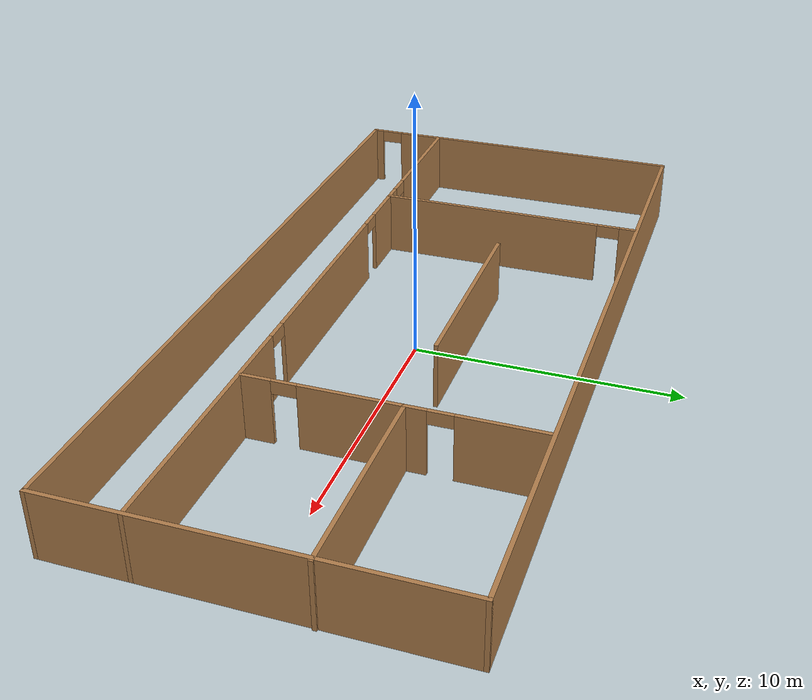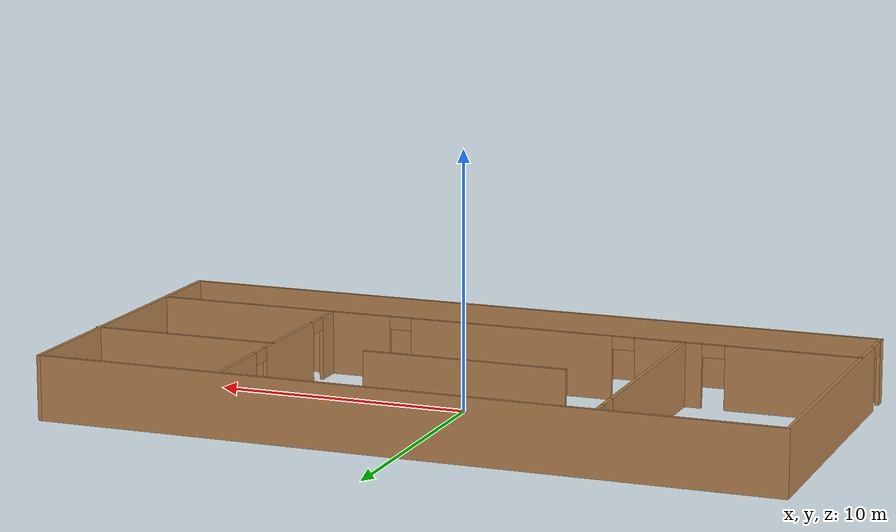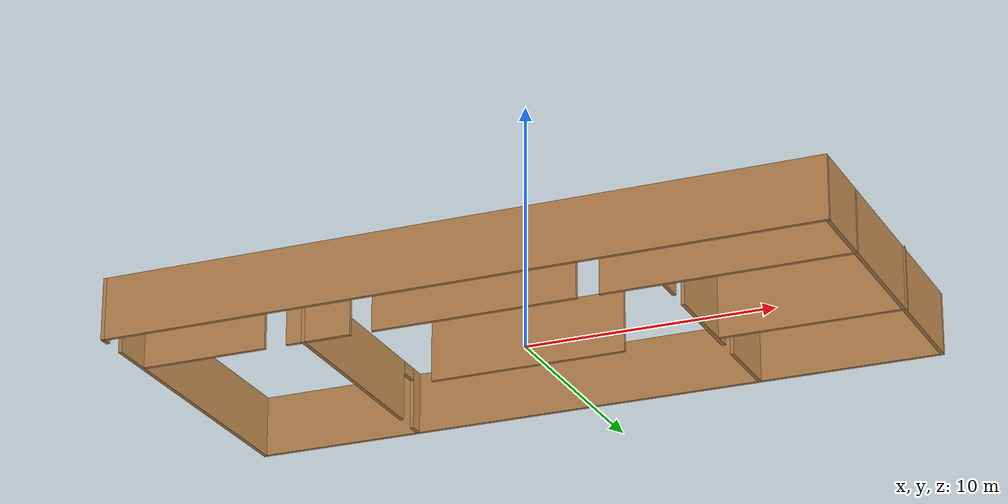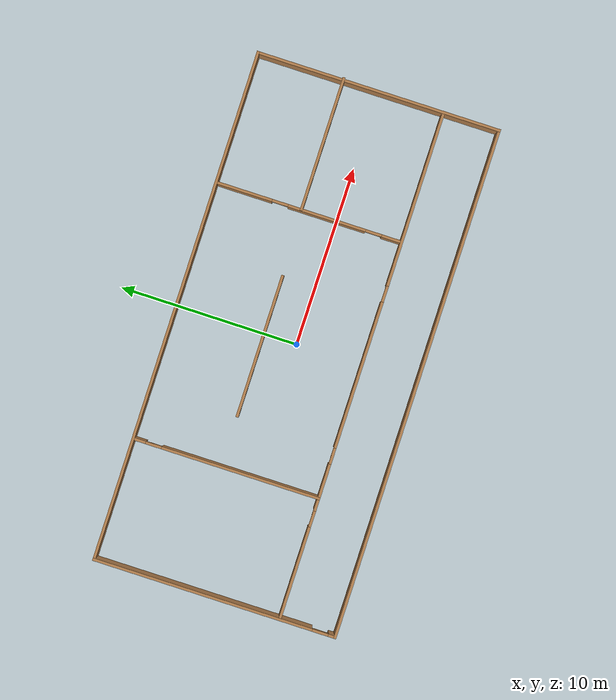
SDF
<?xml version='1.0'?>
<sdf version='1.6'>
  <model name='mybuilding'>
    <link name='Wall_0'>
      <pose frame=''>-14.3342 0 0 0 -0 1.5708</pose>
      <self_collide>0</self_collide>
      <kinematic>0</kinematic>
      <visual name='Wall_0_Visual_0'>
        <pose frame=''>-6.64035 0 1.25 0 -0 0</pose>
        <geometry>
          <box>
            <size>0.46929 0.15 2.5</size>
          </box>
        </geometry>
        <material>
          <script>
            <uri>file://media/materials/scripts/gazebo.material</uri>
            <name>Gazebo/Wood</name>
          </script>
          <ambient>1 1 1 1</ambient>
          <shader type='pixel'/>
          <diffuse>1 1 1 1</diffuse>
          <specular>0.2 0.2 0.2 1</specular>
          <emissive>0 0 0 1</emissive>
        </material>
        <meta>
          <layer>0</layer>
        </meta>
        <transparency>0</transparency>
        <cast_shadows>1</cast_shadows>
      </visual>
      <visual name='Wall_0_Visual_1'>
        <pose frame=''>0.684645 0 1.25 0 -0 0</pose>
        <geometry>
          <box>
            <size>12.3807 0.15 2.5</size>
          </box>
        </geometry>
        <material>
          <script>
            <uri>file://media/materials/scripts/gazebo.material</uri>
            <name>Gazebo/Wood</name>
          </script>
          <ambient>1 1 1 1</ambient>
          <shader type='pixel'/>
          <diffuse>1 1 1 1</diffuse>
          <specular>0.2 0.2 0.2 1</specular>
          <emissive>0 0 0 1</emissive>
        </material>
        <meta>
          <layer>0</layer>
        </meta>
        <transparency>0</transparency>
        <cast_shadows>1</cast_shadows>
      </visual>
      <visual name='Wall_0_Visual_2'>
        <pose frame=''>-5.95571 0 2.25 0 -0 0</pose>
        <geometry>
          <box>
            <size>0.9 0.15 0.5</size>
          </box>
        </geometry>
        <material>
          <script>
            <uri>file://media/materials/scripts/gazebo.material</uri>
            <name>Gazebo/Wood</name>
          </script>
          <ambient>1 1 1 1</ambient>
          <shader type='pixel'/>
          <diffuse>1 1 1 1</diffuse>
          <specular>0.2 0.2 0.2 1</specular>
          <emissive>0 0 0 1</emissive>
        </material>
        <meta>
          <layer>0</layer>
        </meta>
        <transparency>0</transparency>
        <cast_shadows>1</cast_shadows>
      </visual>
      <collision name='Wall_0_Collision_0'>
        <laser_retro>0</laser_retro>
        <max_contacts>10</max_contacts>
        <pose frame=''>-6.64035 0 1.25 0 -0 0</pose>
        <geometry>
          <box>
            <size>0.46929 0.15 2.5</size>
          </box>
        </geometry>
        <surface>
          <friction>
            <ode>
              <mu>1</mu>
              <mu2>1</mu2>
              <fdir1>0 0 0</fdir1>
              <slip1>0</slip1>
              <slip2>0</slip2>
            </ode>
            <torsional>
              <coefficient>1</coefficient>
              <patch_radius>0</patch_radius>
              <surface_radius>0</surface_radius>
              <use_patch_radius>1</use_patch_radius>
              <ode>
                <slip>0</slip>
              </ode>
            </torsional>
          </friction>
          <bounce>
            <restitution_coefficient>0</restitution_coefficient>
            <threshold>1e+06</threshold>
          </bounce>
          <contact>
            <collide_without_contact>0</collide_without_contact>
            <collide_without_contact_bitmask>1</collide_without_contact_bitmask>
            <collide_bitmask>1</collide_bitmask>
            <ode>
              <soft_cfm>0</soft_cfm>
              <soft_erp>0.2</soft_erp>
              <kp>1e+13</kp>
              <kd>1</kd>
              <max_vel>0.01</max_vel>
              <min_depth>0</min_depth>
            </ode>
            <bullet>
              <split_impulse>1</split_impulse>
              <split_impulse_penetration_threshold>-0.01</split_impulse_penetration_threshold>
              <soft_cfm>0</soft_cfm>
              <soft_erp>0.2</soft_erp>
              <kp>1e+13</kp>
              <kd>1</kd>
            </bullet>
          </contact>
        </surface>
      </collision>
      <collision name='Wall_0_Collision_1'>
        <laser_retro>0</laser_retro>
        <max_contacts>10</max_contacts>
        <pose frame=''>0.684645 0 1.25 0 -0 0</pose>
        <geometry>
          <box>
            <size>12.3807 0.15 2.5</size>
          </box>
        </geometry>
        <surface>
          <friction>
            <ode>
              <mu>1</mu>
              <mu2>1</mu2>
              <fdir1>0 0 0</fdir1>
              <slip1>0</slip1>
              <slip2>0</slip2>
            </ode>
            <torsional>
              <coefficient>1</coefficient>
              <patch_radius>0</patch_radius>
              <surface_radius>0</surface_radius>
              <use_patch_radius>1</use_patch_radius>
              <ode>
                <slip>0</slip>
              </ode>
            </torsional>
          </friction>
          <bounce>
            <restitution_coefficient>0</restitution_coefficient>
            <threshold>1e+06</threshold>
          </bounce>
          <contact>
            <collide_without_contact>0</collide_without_contact>
            <collide_without_contact_bitmask>1</collide_without_contact_bitmask>
            <collide_bitmask>1</collide_bitmask>
            <ode>
              <soft_cfm>0</soft_cfm>
              <soft_erp>0.2</soft_erp>
              <kp>1e+13</kp>
              <kd>1</kd>
              <max_vel>0.01</max_vel>
              <min_depth>0</min_depth>
            </ode>
            <bullet>
              <split_impulse>1</split_impulse>
              <split_impulse_penetration_threshold>-0.01</split_impulse_penetration_threshold>
              <soft_cfm>0</soft_cfm>
              <soft_erp>0.2</soft_erp>
              <kp>1e+13</kp>
              <kd>1</kd>
            </bullet>
          </contact>
        </surface>
      </collision>
      <collision name='Wall_0_Collision_2'>
        <laser_retro>0</laser_retro>
        <max_contacts>10</max_contacts>
        <pose frame=''>-5.95571 0 2.25 0 -0 0</pose>
        <geometry>
          <box>
            <size>0.9 0.15 0.5</size>
          </box>
        </geometry>
        <surface>
          <friction>
            <ode>
              <mu>1</mu>
              <mu2>1</mu2>
              <fdir1>0 0 0</fdir1>
              <slip1>0</slip1>
              <slip2>0</slip2>
            </ode>
            <torsional>
              <coefficient>1</coefficient>
              <patch_radius>0</patch_radius>
              <surface_radius>0</surface_radius>
              <use_patch_radius>1</use_patch_radius>
              <ode>
                <slip>0</slip>
              </ode>
            </torsional>
          </friction>
          <bounce>
            <restitution_coefficient>0</restitution_coefficient>
            <threshold>1e+06</threshold>
          </bounce>
          <contact>
            <collide_without_contact>0</collide_without_contact>
            <collide_without_contact_bitmask>1</collide_without_contact_bitmask>
            <collide_bitmask>1</collide_bitmask>
            <ode>
              <soft_cfm>0</soft_cfm>
              <soft_erp>0.2</soft_erp>
              <kp>1e+13</kp>
              <kd>1</kd>
              <max_vel>0.01</max_vel>
              <min_depth>0</min_depth>
            </ode>
            <bullet>
              <split_impulse>1</split_impulse>
              <split_impulse_penetration_threshold>-0.01</split_impulse_penetration_threshold>
              <soft_cfm>0</soft_cfm>
              <soft_erp>0.2</soft_erp>
              <kp>1e+13</kp>
              <kd>1</kd>
            </bullet>
          </contact>
        </surface>
      </collision>
    </link>
    <link name='Wall_1'>
      <pose frame=''>-0.034165 6.8 0 0 -0 0</pose>
      <self_collide>0</self_collide>
      <kinematic>0</kinematic>
      <visual name='Wall_1_Visual'>
        <pose frame=''>0 0 1.25 0 -0 0</pose>
        <geometry>
          <box>
            <size>28.75 0.15 2.5</size>
          </box>
        </geometry>
        <material>
          <script>
            <uri>file://media/materials/scripts/gazebo.material</uri>
            <name>Gazebo/Wood</name>
          </script>
          <ambient>1 1 1 1</ambient>
          <shader type='pixel'/>
          <diffuse>1 1 1 1</diffuse>
          <specular>0.2 0.2 0.2 1</specular>
          <emissive>0 0 0 1</emissive>
        </material>
        <meta>
          <layer>0</layer>
        </meta>
        <transparency>0</transparency>
        <cast_shadows>1</cast_shadows>
      </visual>
      <collision name='Wall_1_Collision'>
        <laser_retro>0</laser_retro>
        <max_contacts>10</max_contacts>
        <pose frame=''>0 0 1.25 0 -0 0</pose>
        <geometry>
          <box>
            <size>28.75 0.15 2.5</size>
          </box>
        </geometry>
        <surface>
          <friction>
            <ode>
              <mu>1</mu>
              <mu2>1</mu2>
              <fdir1>0 0 0</fdir1>
              <slip1>0</slip1>
              <slip2>0</slip2>
            </ode>
            <torsional>
              <coefficient>1</coefficient>
              <patch_radius>0</patch_radius>
              <surface_radius>0</surface_radius>
              <use_patch_radius>1</use_patch_radius>
              <ode>
                <slip>0</slip>
              </ode>
            </torsional>
          </friction>
          <bounce>
            <restitution_coefficient>0</restitution_coefficient>
            <threshold>1e+06</threshold>
          </bounce>
          <contact>
            <collide_without_contact>0</collide_without_contact>
            <collide_without_contact_bitmask>1</collide_without_contact_bitmask>
            <collide_bitmask>1</collide_bitmask>
            <ode>
              <soft_cfm>0</soft_cfm>
              <soft_erp>0.2</soft_erp>
              <kp>1e+13</kp>
              <kd>1</kd>
              <max_vel>0.01</max_vel>
              <min_depth>0</min_depth>
            </ode>
            <bullet>
              <split_impulse>1</split_impulse>
              <split_impulse_penetration_threshold>-0.01</split_impulse_penetration_threshold>
              <soft_cfm>0</soft_cfm>
              <soft_erp>0.2</soft_erp>
              <kp>1e+13</kp>
              <kd>1</kd>
            </bullet>
          </contact>
        </surface>
      </collision>
    </link>
    <link name='Wall_11'>
      <pose frame=''>10.6592 1.99469 0 0 -0 0</pose>
      <self_collide>0</self_collide>
      <kinematic>0</kinematic>
      <visual name='Wall_11_Visual'>
        <pose frame=''>0 0 1.25 0 -0 0</pose>
        <geometry>
          <box>
            <size>7.5 0.15 2.5</size>
          </box>
        </geometry>
        <material>
          <script>
            <uri>file://media/materials/scripts/gazebo.material</uri>
            <name>Gazebo/Wood</name>
          </script>
          <ambient>1 1 1 1</ambient>
          <shader type='pixel'/>
          <diffuse>1 1 1 1</diffuse>
          <specular>0.2 0.2 0.2 1</specular>
          <emissive>0 0 0 1</emissive>
        </material>
        <meta>
          <layer>0</layer>
        </meta>
        <transparency>0</transparency>
        <cast_shadows>1</cast_shadows>
      </visual>
      <collision name='Wall_11_Collision'>
        <laser_retro>0</laser_retro>
        <max_contacts>10</max_contacts>
        <pose frame=''>0 0 1.25 0 -0 0</pose>
        <geometry>
          <box>
            <size>7.5 0.15 2.5</size>
          </box>
        </geometry>
        <surface>
          <friction>
            <ode>
              <mu>1</mu>
              <mu2>1</mu2>
              <fdir1>0 0 0</fdir1>
              <slip1>0</slip1>
              <slip2>0</slip2>
            </ode>
            <torsional>
              <coefficient>1</coefficient>
              <patch_radius>0</patch_radius>
              <surface_radius>0</surface_radius>
              <use_patch_radius>1</use_patch_radius>
              <ode>
                <slip>0</slip>
              </ode>
            </torsional>
          </friction>
          <bounce>
            <restitution_coefficient>0</restitution_coefficient>
            <threshold>1e+06</threshold>
          </bounce>
          <contact>
            <collide_without_contact>0</collide_without_contact>
            <collide_without_contact_bitmask>1</collide_without_contact_bitmask>
            <collide_bitmask>1</collide_bitmask>
            <ode>
              <soft_cfm>0</soft_cfm>
              <soft_erp>0.2</soft_erp>
              <kp>1e+13</kp>
              <kd>1</kd>
              <max_vel>0.01</max_vel>
              <min_depth>0</min_depth>
            </ode>
            <bullet>
              <split_impulse>1</split_impulse>
              <split_impulse_penetration_threshold>-0.01</split_impulse_penetration_threshold>
              <soft_cfm>0</soft_cfm>
              <soft_erp>0.2</soft_erp>
              <kp>1e+13</kp>
              <kd>1</kd>
            </bullet>
          </contact>
        </surface>
      </collision>
    </link>
    <link name='Wall_13'>
      <pose frame=''>-0.699826 1.85398 0 0 -0 0</pose>
      <self_collide>0</self_collide>
      <kinematic>0</kinematic>
      <visual name='Wall_13_Visual'>
        <pose frame=''>0 0 1.25 0 -0 0</pose>
        <geometry>
          <box>
            <size>8 0.15 2.5</size>
          </box>
        </geometry>
        <material>
          <script>
            <uri>file://media/materials/scripts/gazebo.material</uri>
            <name>Gazebo/Wood</name>
          </script>
          <ambient>1 1 1 1</ambient>
          <shader type='pixel'/>
          <diffuse>1 1 1 1</diffuse>
          <specular>0.2 0.2 0.2 1</specular>
          <emissive>0 0 0 1</emissive>
        </material>
        <meta>
          <layer>0</layer>
        </meta>
        <transparency>0</transparency>
        <cast_shadows>1</cast_shadows>
      </visual>
      <collision name='Wall_13_Collision'>
        <laser_retro>0</laser_retro>
        <max_contacts>10</max_contacts>
        <pose frame=''>0 0 1.25 0 -0 0</pose>
        <geometry>
          <box>
            <size>8 0.15 2.5</size>
          </box>
        </geometry>
        <surface>
          <friction>
            <ode>
              <mu>1</mu>
              <mu2>1</mu2>
              <fdir1>0 0 0</fdir1>
              <slip1>0</slip1>
              <slip2>0</slip2>
            </ode>
            <torsional>
              <coefficient>1</coefficient>
              <patch_radius>0</patch_radius>
              <surface_radius>0</surface_radius>
              <use_patch_radius>1</use_patch_radius>
              <ode>
                <slip>0</slip>
              </ode>
            </torsional>
          </friction>
          <bounce>
            <restitution_coefficient>0</restitution_coefficient>
            <threshold>1e+06</threshold>
          </bounce>
          <contact>
            <collide_without_contact>0</collide_without_contact>
            <collide_without_contact_bitmask>1</collide_without_contact_bitmask>
            <collide_bitmask>1</collide_bitmask>
            <ode>
              <soft_cfm>0</soft_cfm>
              <soft_erp>0.2</soft_erp>
              <kp>1e+13</kp>
              <kd>1</kd>
              <max_vel>0.01</max_vel>
              <min_depth>0</min_depth>
            </ode>
            <bullet>
              <split_impulse>1</split_impulse>
              <split_impulse_penetration_threshold>-0.01</split_impulse_penetration_threshold>
              <soft_cfm>0</soft_cfm>
              <soft_erp>0.2</soft_erp>
              <kp>1e+13</kp>
              <kd>1</kd>
            </bullet>
          </contact>
        </surface>
      </collision>
    </link>
    <link name='Wall_2'>
      <pose frame=''>14.2658 0 0 0 0 -1.5708</pose>
      <self_collide>0</self_collide>
      <kinematic>0</kinematic>
      <visual name='Wall_2_Visual'>
        <pose frame=''>0 0 1.25 0 -0 0</pose>
        <geometry>
          <box>
            <size>13.75 0.15 2.5</size>
          </box>
        </geometry>
        <material>
          <script>
            <uri>file://media/materials/scripts/gazebo.material</uri>
            <name>Gazebo/Wood</name>
          </script>
          <ambient>1 1 1 1</ambient>
          <shader type='pixel'/>
          <diffuse>1 1 1 1</diffuse>
          <specular>0.2 0.2 0.2 1</specular>
          <emissive>0 0 0 1</emissive>
        </material>
        <meta>
          <layer>0</layer>
        </meta>
        <transparency>0</transparency>
        <cast_shadows>1</cast_shadows>
      </visual>
      <collision name='Wall_2_Collision'>
        <laser_retro>0</laser_retro>
        <max_contacts>10</max_contacts>
        <pose frame=''>0 0 1.25 0 -0 0</pose>
        <geometry>
          <box>
            <size>13.75 0.15 2.5</size>
          </box>
        </geometry>
        <surface>
          <friction>
            <ode>
              <mu>1</mu>
              <mu2>1</mu2>
              <fdir1>0 0 0</fdir1>
              <slip1>0</slip1>
              <slip2>0</slip2>
            </ode>
            <torsional>
              <coefficient>1</coefficient>
              <patch_radius>0</patch_radius>
              <surface_radius>0</surface_radius>
              <use_patch_radius>1</use_patch_radius>
              <ode>
                <slip>0</slip>
              </ode>
            </torsional>
          </friction>
          <bounce>
            <restitution_coefficient>0</restitution_coefficient>
            <threshold>1e+06</threshold>
          </bounce>
          <contact>
            <collide_without_contact>0</collide_without_contact>
            <collide_without_contact_bitmask>1</collide_without_contact_bitmask>
            <collide_bitmask>1</collide_bitmask>
            <ode>
              <soft_cfm>0</soft_cfm>
              <soft_erp>0.2</soft_erp>
              <kp>1e+13</kp>
              <kd>1</kd>
              <max_vel>0.01</max_vel>
              <min_depth>0</min_depth>
            </ode>
            <bullet>
              <split_impulse>1</split_impulse>
              <split_impulse_penetration_threshold>-0.01</split_impulse_penetration_threshold>
              <soft_cfm>0</soft_cfm>
              <soft_erp>0.2</soft_erp>
              <kp>1e+13</kp>
              <kd>1</kd>
            </bullet>
          </contact>
        </surface>
      </collision>
    </link>
    <link name='Wall_3'>
      <pose frame=''>-0.034165 -6.8 0 0 -0 3.14159</pose>
      <self_collide>0</self_collide>
      <kinematic>0</kinematic>
      <visual name='Wall_3_Visual'>
        <pose frame=''>0 0 1.25 0 -0 0</pose>
        <geometry>
          <box>
            <size>28.75 0.15 2.5</size>
          </box>
        </geometry>
        <material>
          <script>
            <uri>file://media/materials/scripts/gazebo.material</uri>
            <name>Gazebo/Wood</name>
          </script>
          <ambient>1 1 1 1</ambient>
          <shader type='pixel'/>
          <diffuse>1 1 1 1</diffuse>
          <specular>0.2 0.2 0.2 1</specular>
          <emissive>0 0 0 1</emissive>
        </material>
        <meta>
          <layer>0</layer>
        </meta>
        <transparency>0</transparency>
        <cast_shadows>1</cast_shadows>
      </visual>
      <collision name='Wall_3_Collision'>
        <laser_retro>0</laser_retro>
        <max_contacts>10</max_contacts>
        <pose frame=''>0 0 1.25 0 -0 0</pose>
        <geometry>
          <box>
            <size>28.75 0.15 2.5</size>
          </box>
        </geometry>
        <surface>
          <friction>
            <ode>
              <mu>1</mu>
              <mu2>1</mu2>
              <fdir1>0 0 0</fdir1>
              <slip1>0</slip1>
              <slip2>0</slip2>
            </ode>
            <torsional>
              <coefficient>1</coefficient>
              <patch_radius>0</patch_radius>
              <surface_radius>0</surface_radius>
              <use_patch_radius>1</use_patch_radius>
              <ode>
                <slip>0</slip>
              </ode>
            </torsional>
          </friction>
          <bounce>
            <restitution_coefficient>0</restitution_coefficient>
            <threshold>1e+06</threshold>
          </bounce>
          <contact>
            <collide_without_contact>0</collide_without_contact>
            <collide_without_contact_bitmask>1</collide_without_contact_bitmask>
            <collide_bitmask>1</collide_bitmask>
            <ode>
              <soft_cfm>0</soft_cfm>
              <soft_erp>0.2</soft_erp>
              <kp>1e+13</kp>
              <kd>1</kd>
              <max_vel>0.01</max_vel>
              <min_depth>0</min_depth>
            </ode>
            <bullet>
              <split_impulse>1</split_impulse>
              <split_impulse_penetration_threshold>-0.01</split_impulse_penetration_threshold>
              <soft_cfm>0</soft_cfm>
              <soft_erp>0.2</soft_erp>
              <kp>1e+13</kp>
              <kd>1</kd>
            </bullet>
          </contact>
        </surface>
      </collision>
    </link>
    <link name='Wall_5'>
      <pose frame=''>-0.034165 -3.66909 0 0 -0 0</pose>
      <self_collide>0</self_collide>
      <kinematic>0</kinematic>
      <visual name='Wall_5_Visual_0'>
        <pose frame=''>-11.7306 0 1.25 0 -0 0</pose>
        <geometry>
          <box>
            <size>5.28878 0.15 2.5</size>
          </box>
        </geometry>
        <material>
          <script>
            <uri>file://media/materials/scripts/gazebo.material</uri>
            <name>Gazebo/Wood</name>
          </script>
          <ambient>1 1 1 1</ambient>
          <shader type='pixel'/>
          <diffuse>1 1 1 1</diffuse>
          <specular>0.2 0.2 0.2 1</specular>
          <emissive>0 0 0 1</emissive>
        </material>
        <meta>
          <layer>0</layer>
        </meta>
        <transparency>0</transparency>
        <cast_shadows>1</cast_shadows>
      </visual>
      <visual name='Wall_5_Visual_1'>
        <pose frame=''>-6.85969 0 1.25 0 -0 0</pose>
        <geometry>
          <box>
            <size>2.65306 0.15 2.5</size>
          </box>
        </geometry>
        <material>
          <script>
            <uri>file://media/materials/scripts/gazebo.material</uri>
            <name>Gazebo/Wood</name>
          </script>
          <ambient>1 1 1 1</ambient>
          <shader type='pixel'/>
          <diffuse>1 1 1 1</diffuse>
          <specular>0.2 0.2 0.2 1</specular>
          <emissive>0 0 0 1</emissive>
        </material>
        <meta>
          <layer>0</layer>
        </meta>
        <transparency>0</transparency>
        <cast_shadows>1</cast_shadows>
      </visual>
      <visual name='Wall_5_Visual_2'>
        <pose frame=''>-0.509925 0 1.25 0 -0 0</pose>
        <geometry>
          <box>
            <size>8.24648 0.15 2.5</size>
          </box>
        </geometry>
        <material>
          <script>
            <uri>file://media/materials/scripts/gazebo.material</uri>
            <name>Gazebo/Wood</name>
          </script>
          <ambient>1 1 1 1</ambient>
          <shader type='pixel'/>
          <diffuse>1 1 1 1</diffuse>
          <specular>0.2 0.2 0.2 1</specular>
          <emissive>0 0 0 1</emissive>
        </material>
        <meta>
          <layer>0</layer>
        </meta>
        <transparency>0</transparency>
        <cast_shadows>1</cast_shadows>
      </visual>
      <visual name='Wall_5_Visual_3'>
        <pose frame=''>9.44416 0 1.25 0 -0 0</pose>
        <geometry>
          <box>
            <size>9.86169 0.15 2.5</size>
          </box>
        </geometry>
        <material>
          <script>
            <uri>file://media/materials/scripts/gazebo.material</uri>
            <name>Gazebo/Wood</name>
          </script>
          <ambient>1 1 1 1</ambient>
          <shader type='pixel'/>
          <diffuse>1 1 1 1</diffuse>
          <specular>0.2 0.2 0.2 1</specular>
          <emissive>0 0 0 1</emissive>
        </material>
        <meta>
          <layer>0</layer>
        </meta>
        <transparency>0</transparency>
        <cast_shadows>1</cast_shadows>
      </visual>
      <visual name='Wall_5_Visual_4'>
        <pose frame=''>-8.63622 0 2.25 0 -0 0</pose>
        <geometry>
          <box>
            <size>0.9 0.15 0.5</size>
          </box>
        </geometry>
        <material>
          <script>
            <uri>file://media/materials/scripts/gazebo.material</uri>
            <name>Gazebo/Wood</name>
          </script>
          <ambient>1 1 1 1</ambient>
          <shader type='pixel'/>
          <diffuse>1 1 1 1</diffuse>
          <specular>0.2 0.2 0.2 1</specular>
          <emissive>0 0 0 1</emissive>
        </material>
        <meta>
          <layer>0</layer>
        </meta>
        <transparency>0</transparency>
        <cast_shadows>1</cast_shadows>
      </visual>
      <visual name='Wall_5_Visual_5'>
        <pose frame=''>-5.08316 0 2.25 0 -0 0</pose>
        <geometry>
          <box>
            <size>0.9 0.15 0.5</size>
          </box>
        </geometry>
        <material>
          <script>
            <uri>file://media/materials/scripts/gazebo.material</uri>
            <name>Gazebo/Wood</name>
          </script>
          <ambient>1 1 1 1</ambient>
          <shader type='pixel'/>
          <diffuse>1 1 1 1</diffuse>
          <specular>0.2 0.2 0.2 1</specular>
          <emissive>0 0 0 1</emissive>
        </material>
        <meta>
          <layer>0</layer>
        </meta>
        <transparency>0</transparency>
        <cast_shadows>1</cast_shadows>
      </visual>
      <visual name='Wall_5_Visual_6'>
        <pose frame=''>4.06331 0 2.25 0 -0 0</pose>
        <geometry>
          <box>
            <size>0.9 0.15 0.5</size>
          </box>
        </geometry>
        <material>
          <script>
            <uri>file://media/materials/scripts/gazebo.material</uri>
            <name>Gazebo/Wood</name>
          </script>
          <ambient>1 1 1 1</ambient>
          <shader type='pixel'/>
          <diffuse>1 1 1 1</diffuse>
          <specular>0.2 0.2 0.2 1</specular>
          <emissive>0 0 0 1</emissive>
        </material>
        <meta>
          <layer>0</layer>
        </meta>
        <transparency>0</transparency>
        <cast_shadows>1</cast_shadows>
      </visual>
      <collision name='Wall_5_Collision_0'>
        <laser_retro>0</laser_retro>
        <max_contacts>10</max_contacts>
        <pose frame=''>-11.7306 0 1.25 0 -0 0</pose>
        <geometry>
          <box>
            <size>5.28878 0.15 2.5</size>
          </box>
        </geometry>
        <surface>
          <friction>
            <ode>
              <mu>1</mu>
              <mu2>1</mu2>
              <fdir1>0 0 0</fdir1>
              <slip1>0</slip1>
              <slip2>0</slip2>
            </ode>
            <torsional>
              <coefficient>1</coefficient>
              <patch_radius>0</patch_radius>
              <surface_radius>0</surface_radius>
              <use_patch_radius>1</use_patch_radius>
              <ode>
                <slip>0</slip>
              </ode>
            </torsional>
          </friction>
          <bounce>
            <restitution_coefficient>0</restitution_coefficient>
            <threshold>1e+06</threshold>
          </bounce>
          <contact>
            <collide_without_contact>0</collide_without_contact>
            <collide_without_contact_bitmask>1</collide_without_contact_bitmask>
            <collide_bitmask>1</collide_bitmask>
            <ode>
              <soft_cfm>0</soft_cfm>
              <soft_erp>0.2</soft_erp>
              <kp>1e+13</kp>
              <kd>1</kd>
              <max_vel>0.01</max_vel>
              <min_depth>0</min_depth>
            </ode>
            <bullet>
              <split_impulse>1</split_impulse>
              <split_impulse_penetration_threshold>-0.01</split_impulse_penetration_threshold>
              <soft_cfm>0</soft_cfm>
              <soft_erp>0.2</soft_erp>
              <kp>1e+13</kp>
              <kd>1</kd>
            </bullet>
          </contact>
        </surface>
      </collision>
      <collision name='Wall_5_Collision_1'>
        <laser_retro>0</laser_retro>
        <max_contacts>10</max_contacts>
        <pose frame=''>-6.85969 0 1.25 0 -0 0</pose>
        <geometry>
          <box>
            <size>2.65306 0.15 2.5</size>
          </box>
        </geometry>
        <surface>
          <friction>
            <ode>
              <mu>1</mu>
              <mu2>1</mu2>
              <fdir1>0 0 0</fdir1>
              <slip1>0</slip1>
              <slip2>0</slip2>
            </ode>
            <torsional>
              <coefficient>1</coefficient>
              <patch_radius>0</patch_radius>
              <surface_radius>0</surface_radius>
              <use_patch_radius>1</use_patch_radius>
              <ode>
                <slip>0</slip>
              </ode>
            </torsional>
          </friction>
          <bounce>
            <restitution_coefficient>0</restitution_coefficient>
            <threshold>1e+06</threshold>
          </bounce>
          <contact>
            <collide_without_contact>0</collide_without_contact>
            <collide_without_contact_bitmask>1</collide_without_contact_bitmask>
            <collide_bitmask>1</collide_bitmask>
            <ode>
              <soft_cfm>0</soft_cfm>
              <soft_erp>0.2</soft_erp>
              <kp>1e+13</kp>
              <kd>1</kd>
              <max_vel>0.01</max_vel>
              <min_depth>0</min_depth>
            </ode>
            <bullet>
              <split_impulse>1</split_impulse>
              <split_impulse_penetration_threshold>-0.01</split_impulse_penetration_threshold>
              <soft_cfm>0</soft_cfm>
              <soft_erp>0.2</soft_erp>
              <kp>1e+13</kp>
              <kd>1</kd>
            </bullet>
          </contact>
        </surface>
      </collision>
      <collision name='Wall_5_Collision_2'>
        <laser_retro>0</laser_retro>
        <max_contacts>10</max_contacts>
        <pose frame=''>-0.509925 0 1.25 0 -0 0</pose>
        <geometry>
          <box>
            <size>8.24648 0.15 2.5</size>
          </box>
        </geometry>
        <surface>
          <friction>
            <ode>
              <mu>1</mu>
              <mu2>1</mu2>
              <fdir1>0 0 0</fdir1>
              <slip1>0</slip1>
              <slip2>0</slip2>
            </ode>
            <torsional>
              <coefficient>1</coefficient>
              <patch_radius>0</patch_radius>
              <surface_radius>0</surface_radius>
              <use_patch_radius>1</use_patch_radius>
              <ode>
                <slip>0</slip>
              </ode>
            </torsional>
          </friction>
          <bounce>
            <restitution_coefficient>0</restitution_coefficient>
            <threshold>1e+06</threshold>
          </bounce>
          <contact>
            <collide_without_contact>0</collide_without_contact>
            <collide_without_contact_bitmask>1</collide_without_contact_bitmask>
            <collide_bitmask>1</collide_bitmask>
            <ode>
              <soft_cfm>0</soft_cfm>
              <soft_erp>0.2</soft_erp>
              <kp>1e+13</kp>
              <kd>1</kd>
              <max_vel>0.01</max_vel>
              <min_depth>0</min_depth>
            </ode>
            <bullet>
              <split_impulse>1</split_impulse>
              <split_impulse_penetration_threshold>-0.01</split_impulse_penetration_threshold>
              <soft_cfm>0</soft_cfm>
              <soft_erp>0.2</soft_erp>
              <kp>1e+13</kp>
              <kd>1</kd>
            </bullet>
          </contact>
        </surface>
      </collision>
      <collision name='Wall_5_Collision_3'>
        <laser_retro>0</laser_retro>
        <max_contacts>10</max_contacts>
        <pose frame=''>9.44416 0 1.25 0 -0 0</pose>
        <geometry>
          <box>
            <size>9.86169 0.15 2.5</size>
          </box>
        </geometry>
        <surface>
          <friction>
            <ode>
              <mu>1</mu>
              <mu2>1</mu2>
              <fdir1>0 0 0</fdir1>
              <slip1>0</slip1>
              <slip2>0</slip2>
            </ode>
            <torsional>
              <coefficient>1</coefficient>
              <patch_radius>0</patch_radius>
              <surface_radius>0</surface_radius>
              <use_patch_radius>1</use_patch_radius>
              <ode>
                <slip>0</slip>
              </ode>
            </torsional>
          </friction>
          <bounce>
            <restitution_coefficient>0</restitution_coefficient>
            <threshold>1e+06</threshold>
          </bounce>
          <contact>
            <collide_without_contact>0</collide_without_contact>
            <collide_without_contact_bitmask>1</collide_without_contact_bitmask>
            <collide_bitmask>1</collide_bitmask>
            <ode>
              <soft_cfm>0</soft_cfm>
              <soft_erp>0.2</soft_erp>
              <kp>1e+13</kp>
              <kd>1</kd>
              <max_vel>0.01</max_vel>
              <min_depth>0</min_depth>
            </ode>
            <bullet>
              <split_impulse>1</split_impulse>
              <split_impulse_penetration_threshold>-0.01</split_impulse_penetration_threshold>
              <soft_cfm>0</soft_cfm>
              <soft_erp>0.2</soft_erp>
              <kp>1e+13</kp>
              <kd>1</kd>
            </bullet>
          </contact>
        </surface>
      </collision>
      <collision name='Wall_5_Collision_4'>
        <laser_retro>0</laser_retro>
        <max_contacts>10</max_contacts>
        <pose frame=''>-8.63622 0 2.25 0 -0 0</pose>
        <geometry>
          <box>
            <size>0.9 0.15 0.5</size>
          </box>
        </geometry>
        <surface>
          <friction>
            <ode>
              <mu>1</mu>
              <mu2>1</mu2>
              <fdir1>0 0 0</fdir1>
              <slip1>0</slip1>
              <slip2>0</slip2>
            </ode>
            <torsional>
              <coefficient>1</coefficient>
              <patch_radius>0</patch_radius>
              <surface_radius>0</surface_radius>
              <use_patch_radius>1</use_patch_radius>
              <ode>
                <slip>0</slip>
              </ode>
            </torsional>
          </friction>
          <bounce>
            <restitution_coefficient>0</restitution_coefficient>
            <threshold>1e+06</threshold>
          </bounce>
          <contact>
            <collide_without_contact>0</collide_without_contact>
            <collide_without_contact_bitmask>1</collide_without_contact_bitmask>
            <collide_bitmask>1</collide_bitmask>
            <ode>
              <soft_cfm>0</soft_cfm>
              <soft_erp>0.2</soft_erp>
              <kp>1e+13</kp>
              <kd>1</kd>
              <max_vel>0.01</max_vel>
              <min_depth>0</min_depth>
            </ode>
            <bullet>
              <split_impulse>1</split_impulse>
              <split_impulse_penetration_threshold>-0.01</split_impulse_penetration_threshold>
              <soft_cfm>0</soft_cfm>
              <soft_erp>0.2</soft_erp>
              <kp>1e+13</kp>
              <kd>1</kd>
            </bullet>
          </contact>
        </surface>
      </collision>
      <collision name='Wall_5_Collision_5'>
        <laser_retro>0</laser_retro>
        <max_contacts>10</max_contacts>
        <pose frame=''>-5.08316 0 2.25 0 -0 0</pose>
        <geometry>
          <box>
            <size>0.9 0.15 0.5</size>
          </box>
        </geometry>
        <surface>
          <friction>
            <ode>
              <mu>1</mu>
              <mu2>1</mu2>
              <fdir1>0 0 0</fdir1>
              <slip1>0</slip1>
              <slip2>0</slip2>
            </ode>
            <torsional>
              <coefficient>1</coefficient>
              <patch_radius>0</patch_radius>
              <surface_radius>0</surface_radius>
              <use_patch_radius>1</use_patch_radius>
              <ode>
                <slip>0</slip>
              </ode>
            </torsional>
          </friction>
          <bounce>
            <restitution_coefficient>0</restitution_coefficient>
            <threshold>1e+06</threshold>
          </bounce>
          <contact>
            <collide_without_contact>0</collide_without_contact>
            <collide_without_contact_bitmask>1</collide_without_contact_bitmask>
            <collide_bitmask>1</collide_bitmask>
            <ode>
              <soft_cfm>0</soft_cfm>
              <soft_erp>0.2</soft_erp>
              <kp>1e+13</kp>
              <kd>1</kd>
              <max_vel>0.01</max_vel>
              <min_depth>0</min_depth>
            </ode>
            <bullet>
              <split_impulse>1</split_impulse>
              <split_impulse_penetration_threshold>-0.01</split_impulse_penetration_threshold>
              <soft_cfm>0</soft_cfm>
              <soft_erp>0.2</soft_erp>
              <kp>1e+13</kp>
              <kd>1</kd>
            </bullet>
          </contact>
        </surface>
      </collision>
      <collision name='Wall_5_Collision_6'>
        <laser_retro>0</laser_retro>
        <max_contacts>10</max_contacts>
        <pose frame=''>4.06331 0 2.25 0 -0 0</pose>
        <geometry>
          <box>
            <size>0.9 0.15 0.5</size>
          </box>
        </geometry>
        <surface>
          <friction>
            <ode>
              <mu>1</mu>
              <mu2>1</mu2>
              <fdir1>0 0 0</fdir1>
              <slip1>0</slip1>
              <slip2>0</slip2>
            </ode>
            <torsional>
              <coefficient>1</coefficient>
              <patch_radius>0</patch_radius>
              <surface_radius>0</surface_radius>
              <use_patch_radius>1</use_patch_radius>
              <ode>
                <slip>0</slip>
              </ode>
            </torsional>
          </friction>
          <bounce>
            <restitution_coefficient>0</restitution_coefficient>
            <threshold>1e+06</threshold>
          </bounce>
          <contact>
            <collide_without_contact>0</collide_without_contact>
            <collide_without_contact_bitmask>1</collide_without_contact_bitmask>
            <collide_bitmask>1</collide_bitmask>
            <ode>
              <soft_cfm>0</soft_cfm>
              <soft_erp>0.2</soft_erp>
              <kp>1e+13</kp>
              <kd>1</kd>
              <max_vel>0.01</max_vel>
              <min_depth>0</min_depth>
            </ode>
            <bullet>
              <split_impulse>1</split_impulse>
              <split_impulse_penetration_threshold>-0.01</split_impulse_penetration_threshold>
              <soft_cfm>0</soft_cfm>
              <soft_erp>0.2</soft_erp>
              <kp>1e+13</kp>
              <kd>1</kd>
            </bullet>
          </contact>
        </surface>
      </collision>
    </link>
    <link name='Wall_7'>
      <pose frame=''>-7.50948 1.50591 0 0 -0 1.5708</pose>
      <self_collide>0</self_collide>
      <kinematic>0</kinematic>
      <visual name='Wall_7_Visual_0'>
        <pose frame=''>-0.776314 0 1.25 0 -0 0</pose>
        <geometry>
          <box>
            <size>8.94737 0.15 2.5</size>
          </box>
        </geometry>
        <material>
          <script>
            <uri>file://media/materials/scripts/gazebo.material</uri>
            <name>Gazebo/Wood</name>
          </script>
          <ambient>1 1 1 1</ambient>
          <shader type='pixel'/>
          <diffuse>1 1 1 1</diffuse>
          <specular>0.2 0.2 0.2 1</specular>
          <emissive>0 0 0 1</emissive>
        </material>
        <meta>
          <layer>0</layer>
        </meta>
        <transparency>0</transparency>
        <cast_shadows>1</cast_shadows>
      </visual>
      <visual name='Wall_7_Visual_1'>
        <pose frame=''>4.92369 0 1.25 0 -0 0</pose>
        <geometry>
          <box>
            <size>0.652628 0.15 2.5</size>
          </box>
        </geometry>
        <material>
          <script>
            <uri>file://media/materials/scripts/gazebo.material</uri>
            <name>Gazebo/Wood</name>
          </script>
          <ambient>1 1 1 1</ambient>
          <shader type='pixel'/>
          <diffuse>1 1 1 1</diffuse>
          <specular>0.2 0.2 0.2 1</specular>
          <emissive>0 0 0 1</emissive>
        </material>
        <meta>
          <layer>0</layer>
        </meta>
        <transparency>0</transparency>
        <cast_shadows>1</cast_shadows>
      </visual>
      <visual name='Wall_7_Visual_2'>
        <pose frame=''>4.14737 0 2.25 0 -0 0</pose>
        <geometry>
          <box>
            <size>0.9 0.15 0.5</size>
          </box>
        </geometry>
        <material>
          <script>
            <uri>file://media/materials/scripts/gazebo.material</uri>
            <name>Gazebo/Wood</name>
          </script>
          <ambient>1 1 1 1</ambient>
          <shader type='pixel'/>
          <diffuse>1 1 1 1</diffuse>
          <specular>0.2 0.2 0.2 1</specular>
          <emissive>0 0 0 1</emissive>
        </material>
        <meta>
          <layer>0</layer>
        </meta>
        <transparency>0</transparency>
        <cast_shadows>1</cast_shadows>
      </visual>
      <collision name='Wall_7_Collision_0'>
        <laser_retro>0</laser_retro>
        <max_contacts>10</max_contacts>
        <pose frame=''>-0.776314 0 1.25 0 -0 0</pose>
        <geometry>
          <box>
            <size>8.94737 0.15 2.5</size>
          </box>
        </geometry>
        <surface>
          <friction>
            <ode>
              <mu>1</mu>
              <mu2>1</mu2>
              <fdir1>0 0 0</fdir1>
              <slip1>0</slip1>
              <slip2>0</slip2>
            </ode>
            <torsional>
              <coefficient>1</coefficient>
              <patch_radius>0</patch_radius>
              <surface_radius>0</surface_radius>
              <use_patch_radius>1</use_patch_radius>
              <ode>
                <slip>0</slip>
              </ode>
            </torsional>
          </friction>
          <bounce>
            <restitution_coefficient>0</restitution_coefficient>
            <threshold>1e+06</threshold>
          </bounce>
          <contact>
            <collide_without_contact>0</collide_without_contact>
            <collide_without_contact_bitmask>1</collide_without_contact_bitmask>
            <collide_bitmask>1</collide_bitmask>
            <ode>
              <soft_cfm>0</soft_cfm>
              <soft_erp>0.2</soft_erp>
              <kp>1e+13</kp>
              <kd>1</kd>
              <max_vel>0.01</max_vel>
              <min_depth>0</min_depth>
            </ode>
            <bullet>
              <split_impulse>1</split_impulse>
              <split_impulse_penetration_threshold>-0.01</split_impulse_penetration_threshold>
              <soft_cfm>0</soft_cfm>
              <soft_erp>0.2</soft_erp>
              <kp>1e+13</kp>
              <kd>1</kd>
            </bullet>
          </contact>
        </surface>
      </collision>
      <collision name='Wall_7_Collision_1'>
        <laser_retro>0</laser_retro>
        <max_contacts>10</max_contacts>
        <pose frame=''>4.92369 0 1.25 0 -0 0</pose>
        <geometry>
          <box>
            <size>0.652628 0.15 2.5</size>
          </box>
        </geometry>
        <surface>
          <friction>
            <ode>
              <mu>1</mu>
              <mu2>1</mu2>
              <fdir1>0 0 0</fdir1>
              <slip1>0</slip1>
              <slip2>0</slip2>
            </ode>
            <torsional>
              <coefficient>1</coefficient>
              <patch_radius>0</patch_radius>
              <surface_radius>0</surface_radius>
              <use_patch_radius>1</use_patch_radius>
              <ode>
                <slip>0</slip>
              </ode>
            </torsional>
          </friction>
          <bounce>
            <restitution_coefficient>0</restitution_coefficient>
            <threshold>1e+06</threshold>
          </bounce>
          <contact>
            <collide_without_contact>0</collide_without_contact>
            <collide_without_contact_bitmask>1</collide_without_contact_bitmask>
            <collide_bitmask>1</collide_bitmask>
            <ode>
              <soft_cfm>0</soft_cfm>
              <soft_erp>0.2</soft_erp>
              <kp>1e+13</kp>
              <kd>1</kd>
              <max_vel>0.01</max_vel>
              <min_depth>0</min_depth>
            </ode>
            <bullet>
              <split_impulse>1</split_impulse>
              <split_impulse_penetration_threshold>-0.01</split_impulse_penetration_threshold>
              <soft_cfm>0</soft_cfm>
              <soft_erp>0.2</soft_erp>
              <kp>1e+13</kp>
              <kd>1</kd>
            </bullet>
          </contact>
        </surface>
      </collision>
      <collision name='Wall_7_Collision_2'>
        <laser_retro>0</laser_retro>
        <max_contacts>10</max_contacts>
        <pose frame=''>4.14737 0 2.25 0 -0 0</pose>
        <geometry>
          <box>
            <size>0.9 0.15 0.5</size>
          </box>
        </geometry>
        <surface>
          <friction>
            <ode>
              <mu>1</mu>
              <mu2>1</mu2>
              <fdir1>0 0 0</fdir1>
              <slip1>0</slip1>
              <slip2>0</slip2>
            </ode>
            <torsional>
              <coefficient>1</coefficient>
              <patch_radius>0</patch_radius>
              <surface_radius>0</surface_radius>
              <use_patch_radius>1</use_patch_radius>
              <ode>
                <slip>0</slip>
              </ode>
            </torsional>
          </friction>
          <bounce>
            <restitution_coefficient>0</restitution_coefficient>
            <threshold>1e+06</threshold>
          </bounce>
          <contact>
            <collide_without_contact>0</collide_without_contact>
            <collide_without_contact_bitmask>1</collide_without_contact_bitmask>
            <collide_bitmask>1</collide_bitmask>
            <ode>
              <soft_cfm>0</soft_cfm>
              <soft_erp>0.2</soft_erp>
              <kp>1e+13</kp>
              <kd>1</kd>
              <max_vel>0.01</max_vel>
              <min_depth>0</min_depth>
            </ode>
            <bullet>
              <split_impulse>1</split_impulse>
              <split_impulse_penetration_threshold>-0.01</split_impulse_penetration_threshold>
              <soft_cfm>0</soft_cfm>
              <soft_erp>0.2</soft_erp>
              <kp>1e+13</kp>
              <kd>1</kd>
            </bullet>
          </contact>
        </surface>
      </collision>
    </link>
    <link name='Wall_9'>
      <pose frame=''>6.94899 1.604 0 0 0 -1.5708</pose>
      <self_collide>0</self_collide>
      <kinematic>0</kinematic>
      <visual name='Wall_9_Visual_0'>
        <pose frame=''>-3.64338 0 1.25 0 -0 0</pose>
        <geometry>
          <box>
            <size>3.21323 0.15 2.5</size>
          </box>
        </geometry>
        <material>
          <script>
            <uri>file://media/materials/scripts/gazebo.material</uri>
            <name>Gazebo/Wood</name>
          </script>
          <ambient>1 1 1 1</ambient>
          <shader type='pixel'/>
          <diffuse>1 1 1 1</diffuse>
          <specular>0.2 0.2 0.2 1</specular>
          <emissive>0 0 0 1</emissive>
        </material>
        <meta>
          <layer>0</layer>
        </meta>
        <transparency>0</transparency>
        <cast_shadows>1</cast_shadows>
      </visual>
      <visual name='Wall_9_Visual_1'>
        <pose frame=''>1.05164 0 1.25 0 -0 0</pose>
        <geometry>
          <box>
            <size>4.37681 0.15 2.5</size>
          </box>
        </geometry>
        <material>
          <script>
            <uri>file://media/materials/scripts/gazebo.material</uri>
            <name>Gazebo/Wood</name>
          </script>
          <ambient>1 1 1 1</ambient>
          <shader type='pixel'/>
          <diffuse>1 1 1 1</diffuse>
          <specular>0.2 0.2 0.2 1</specular>
          <emissive>0 0 0 1</emissive>
        </material>
        <meta>
          <layer>0</layer>
        </meta>
        <transparency>0</transparency>
        <cast_shadows>1</cast_shadows>
      </visual>
      <visual name='Wall_9_Visual_2'>
        <pose frame=''>4.69502 0 1.25 0 -0 0</pose>
        <geometry>
          <box>
            <size>1.10995 0.15 2.5</size>
          </box>
        </geometry>
        <material>
          <script>
            <uri>file://media/materials/scripts/gazebo.material</uri>
            <name>Gazebo/Wood</name>
          </script>
          <ambient>1 1 1 1</ambient>
          <shader type='pixel'/>
          <diffuse>1 1 1 1</diffuse>
          <specular>0.2 0.2 0.2 1</specular>
          <emissive>0 0 0 1</emissive>
        </material>
        <meta>
          <layer>0</layer>
        </meta>
        <transparency>0</transparency>
        <cast_shadows>1</cast_shadows>
      </visual>
      <visual name='Wall_9_Visual_3'>
        <pose frame=''>-1.58677 0 2.25 0 -0 0</pose>
        <geometry>
          <box>
            <size>0.9 0.15 0.5</size>
          </box>
        </geometry>
        <material>
          <script>
            <uri>file://media/materials/scripts/gazebo.material</uri>
            <name>Gazebo/Wood</name>
          </script>
          <ambient>1 1 1 1</ambient>
          <shader type='pixel'/>
          <diffuse>1 1 1 1</diffuse>
          <specular>0.2 0.2 0.2 1</specular>
          <emissive>0 0 0 1</emissive>
        </material>
        <meta>
          <layer>0</layer>
        </meta>
        <transparency>0</transparency>
        <cast_shadows>1</cast_shadows>
      </visual>
      <visual name='Wall_9_Visual_4'>
        <pose frame=''>3.69005 0 2.25 0 -0 0</pose>
        <geometry>
          <box>
            <size>0.9 0.15 0.5</size>
          </box>
        </geometry>
        <material>
          <script>
            <uri>file://media/materials/scripts/gazebo.material</uri>
            <name>Gazebo/Wood</name>
          </script>
          <ambient>1 1 1 1</ambient>
          <shader type='pixel'/>
          <diffuse>1 1 1 1</diffuse>
          <specular>0.2 0.2 0.2 1</specular>
          <emissive>0 0 0 1</emissive>
        </material>
        <meta>
          <layer>0</layer>
        </meta>
        <transparency>0</transparency>
        <cast_shadows>1</cast_shadows>
      </visual>
      <collision name='Wall_9_Collision_0'>
        <laser_retro>0</laser_retro>
        <max_contacts>10</max_contacts>
        <pose frame=''>-3.64338 0 1.25 0 -0 0</pose>
        <geometry>
          <box>
            <size>3.21323 0.15 2.5</size>
          </box>
        </geometry>
        <surface>
          <friction>
            <ode>
              <mu>1</mu>
              <mu2>1</mu2>
              <fdir1>0 0 0</fdir1>
              <slip1>0</slip1>
              <slip2>0</slip2>
            </ode>
            <torsional>
              <coefficient>1</coefficient>
              <patch_radius>0</patch_radius>
              <surface_radius>0</surface_radius>
              <use_patch_radius>1</use_patch_radius>
              <ode>
                <slip>0</slip>
              </ode>
            </torsional>
          </friction>
          <bounce>
            <restitution_coefficient>0</restitution_coefficient>
            <threshold>1e+06</threshold>
          </bounce>
          <contact>
            <collide_without_contact>0</collide_without_contact>
            <collide_without_contact_bitmask>1</collide_without_contact_bitmask>
            <collide_bitmask>1</collide_bitmask>
            <ode>
              <soft_cfm>0</soft_cfm>
              <soft_erp>0.2</soft_erp>
              <kp>1e+13</kp>
              <kd>1</kd>
              <max_vel>0.01</max_vel>
              <min_depth>0</min_depth>
            </ode>
            <bullet>
              <split_impulse>1</split_impulse>
              <split_impulse_penetration_threshold>-0.01</split_impulse_penetration_threshold>
              <soft_cfm>0</soft_cfm>
              <soft_erp>0.2</soft_erp>
              <kp>1e+13</kp>
              <kd>1</kd>
            </bullet>
          </contact>
        </surface>
      </collision>
      <collision name='Wall_9_Collision_1'>
        <laser_retro>0</laser_retro>
        <max_contacts>10</max_contacts>
        <pose frame=''>1.05164 0 1.25 0 -0 0</pose>
        <geometry>
          <box>
            <size>4.37681 0.15 2.5</size>
          </box>
        </geometry>
        <surface>
          <friction>
            <ode>
              <mu>1</mu>
              <mu2>1</mu2>
              <fdir1>0 0 0</fdir1>
              <slip1>0</slip1>
              <slip2>0</slip2>
            </ode>
            <torsional>
              <coefficient>1</coefficient>
              <patch_radius>0</patch_radius>
              <surface_radius>0</surface_radius>
              <use_patch_radius>1</use_patch_radius>
              <ode>
                <slip>0</slip>
              </ode>
            </torsional>
          </friction>
          <bounce>
            <restitution_coefficient>0</restitution_coefficient>
            <threshold>1e+06</threshold>
          </bounce>
          <contact>
            <collide_without_contact>0</collide_without_contact>
            <collide_without_contact_bitmask>1</collide_without_contact_bitmask>
            <collide_bitmask>1</collide_bitmask>
            <ode>
              <soft_cfm>0</soft_cfm>
              <soft_erp>0.2</soft_erp>
              <kp>1e+13</kp>
              <kd>1</kd>
              <max_vel>0.01</max_vel>
              <min_depth>0</min_depth>
            </ode>
            <bullet>
              <split_impulse>1</split_impulse>
              <split_impulse_penetration_threshold>-0.01</split_impulse_penetration_threshold>
              <soft_cfm>0</soft_cfm>
              <soft_erp>0.2</soft_erp>
              <kp>1e+13</kp>
              <kd>1</kd>
            </bullet>
          </contact>
        </surface>
      </collision>
      <collision name='Wall_9_Collision_2'>
        <laser_retro>0</laser_retro>
        <max_contacts>10</max_contacts>
        <pose frame=''>4.69502 0 1.25 0 -0 0</pose>
        <geometry>
          <box>
            <size>1.10995 0.15 2.5</size>
          </box>
        </geometry>
        <surface>
          <friction>
            <ode>
              <mu>1</mu>
              <mu2>1</mu2>
              <fdir1>0 0 0</fdir1>
              <slip1>0</slip1>
              <slip2>0</slip2>
            </ode>
            <torsional>
              <coefficient>1</coefficient>
              <patch_radius>0</patch_radius>
              <surface_radius>0</surface_radius>
              <use_patch_radius>1</use_patch_radius>
              <ode>
                <slip>0</slip>
              </ode>
            </torsional>
          </friction>
          <bounce>
            <restitution_coefficient>0</restitution_coefficient>
            <threshold>1e+06</threshold>
          </bounce>
          <contact>
            <collide_without_contact>0</collide_without_contact>
            <collide_without_contact_bitmask>1</collide_without_contact_bitmask>
            <collide_bitmask>1</collide_bitmask>
            <ode>
              <soft_cfm>0</soft_cfm>
              <soft_erp>0.2</soft_erp>
              <kp>1e+13</kp>
              <kd>1</kd>
              <max_vel>0.01</max_vel>
              <min_depth>0</min_depth>
            </ode>
            <bullet>
              <split_impulse>1</split_impulse>
              <split_impulse_penetration_threshold>-0.01</split_impulse_penetration_threshold>
              <soft_cfm>0</soft_cfm>
              <soft_erp>0.2</soft_erp>
              <kp>1e+13</kp>
              <kd>1</kd>
            </bullet>
          </contact>
        </surface>
      </collision>
      <collision name='Wall_9_Collision_3'>
        <laser_retro>0</laser_retro>
        <max_contacts>10</max_contacts>
        <pose frame=''>-1.58677 0 2.25 0 -0 0</pose>
        <geometry>
          <box>
            <size>0.9 0.15 0.5</size>
          </box>
        </geometry>
        <surface>
          <friction>
            <ode>
              <mu>1</mu>
              <mu2>1</mu2>
              <fdir1>0 0 0</fdir1>
              <slip1>0</slip1>
              <slip2>0</slip2>
            </ode>
            <torsional>
              <coefficient>1</coefficient>
              <patch_radius>0</patch_radius>
              <surface_radius>0</surface_radius>
              <use_patch_radius>1</use_patch_radius>
              <ode>
                <slip>0</slip>
              </ode>
            </torsional>
          </friction>
          <bounce>
            <restitution_coefficient>0</restitution_coefficient>
            <threshold>1e+06</threshold>
          </bounce>
          <contact>
            <collide_without_contact>0</collide_without_contact>
            <collide_without_contact_bitmask>1</collide_without_contact_bitmask>
            <collide_bitmask>1</collide_bitmask>
            <ode>
              <soft_cfm>0</soft_cfm>
              <soft_erp>0.2</soft_erp>
              <kp>1e+13</kp>
              <kd>1</kd>
              <max_vel>0.01</max_vel>
              <min_depth>0</min_depth>
            </ode>
            <bullet>
              <split_impulse>1</split_impulse>
              <split_impulse_penetration_threshold>-0.01</split_impulse_penetration_threshold>
              <soft_cfm>0</soft_cfm>
              <soft_erp>0.2</soft_erp>
              <kp>1e+13</kp>
              <kd>1</kd>
            </bullet>
          </contact>
        </surface>
      </collision>
      <collision name='Wall_9_Collision_4'>
        <laser_retro>0</laser_retro>
        <max_contacts>10</max_contacts>
        <pose frame=''>3.69005 0 2.25 0 -0 0</pose>
        <geometry>
          <box>
            <size>0.9 0.15 0.5</size>
          </box>
        </geometry>
        <surface>
          <friction>
            <ode>
              <mu>1</mu>
              <mu2>1</mu2>
              <fdir1>0 0 0</fdir1>
              <slip1>0</slip1>
              <slip2>0</slip2>
            </ode>
            <torsional>
              <coefficient>1</coefficient>
              <patch_radius>0</patch_radius>
              <surface_radius>0</surface_radius>
              <use_patch_radius>1</use_patch_radius>
              <ode>
                <slip>0</slip>
              </ode>
            </torsional>
          </friction>
          <bounce>
            <restitution_coefficient>0</restitution_coefficient>
            <threshold>1e+06</threshold>
          </bounce>
          <contact>
            <collide_without_contact>0</collide_without_contact>
            <collide_without_contact_bitmask>1</collide_without_contact_bitmask>
            <collide_bitmask>1</collide_bitmask>
            <ode>
              <soft_cfm>0</soft_cfm>
              <soft_erp>0.2</soft_erp>
              <kp>1e+13</kp>
              <kd>1</kd>
              <max_vel>0.01</max_vel>
              <min_depth>0</min_depth>
            </ode>
            <bullet>
              <split_impulse>1</split_impulse>
              <split_impulse_penetration_threshold>-0.01</split_impulse_penetration_threshold>
              <soft_cfm>0</soft_cfm>
              <soft_erp>0.2</soft_erp>
              <kp>1e+13</kp>
              <kd>1</kd>
            </bullet>
          </contact>
        </surface>
      </collision>
    </link>
    <static>1</static>
    <allow_auto_disable>1</allow_auto_disable>
  </model>
</sdf>
